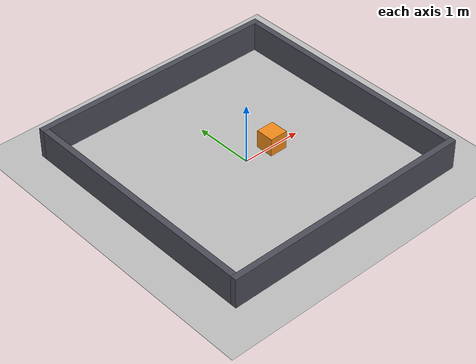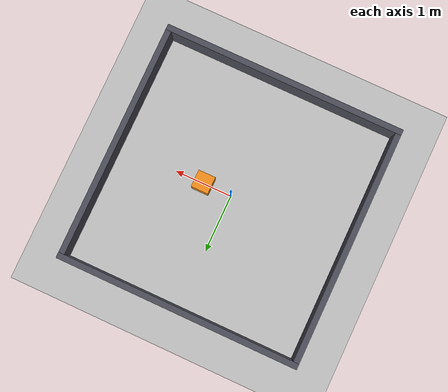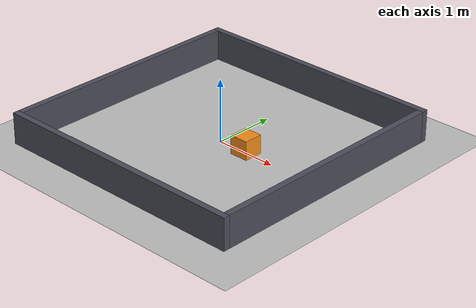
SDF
<?xml version="1.0"?>
<sdf version="1.10">
  <world name="arena">

    <physics name="1ms" type="ignored">
      <max_step_size>0.001</max_step_size>
      <real_time_factor>1.0</real_time_factor>
    </physics>

    <plugin filename="gz-sim-physics-system" name="gz::sim::systems::Physics"/>
    <plugin filename="gz-sim-user-commands-system" name="gz::sim::systems::UserCommands"/>
    <plugin filename="gz-sim-scene-broadcaster-system" name="gz::sim::systems::SceneBroadcaster"/>
    <plugin filename="gz-sim-sensors-system" name="gz::sim::systems::Sensors">
      <render_engine>ogre2</render_engine>
    </plugin>

    <light type="directional" name="sun">
      <cast_shadows>true</cast_shadows>
      <pose>0 0 10 0 0 0</pose>
      <diffuse>0.9 0.9 0.9 1</diffuse>
      <specular>0.2 0.2 0.2 1</specular>
      <direction>-0.5 0.1 -0.9</direction>
    </light>

    <!-- Sol -->
    <model name="sol">
      <static>true</static>
      <link name="link">
        <collision name="collision">
          <geometry><plane><normal>0 0 1</normal><size>20 20</size></plane></geometry>
        </collision>
        <visual name="visual">
          <geometry><plane><normal>0 0 1</normal><size>20 20</size></plane></geometry>
          <material>
            <ambient>0.75 0.75 0.75 1</ambient>
            <diffuse>0.75 0.75 0.75 1</diffuse>
          </material>
        </visual>
      </link>
    </model>

    <!-- Murs de l'arène 4 m x 4 m -->
    <model name="murs">
      <static>true</static>
      <link name="mur_nord">
        <pose>0 2.05 0.25 0 0 0</pose>
        <collision name="collision"><geometry><box><size>4.2 0.1 0.5</size></box></geometry></collision>
        <visual name="visual">
          <geometry><box><size>4.2 0.1 0.5</size></box></geometry>
          <material><ambient>0.3 0.3 0.35 1</ambient><diffuse>0.3 0.3 0.35 1</diffuse></material>
        </visual>
      </link>
      <link name="mur_sud">
        <pose>0 -2.05 0.25 0 0 0</pose>
        <collision name="collision"><geometry><box><size>4.2 0.1 0.5</size></box></geometry></collision>
        <visual name="visual">
          <geometry><box><size>4.2 0.1 0.5</size></box></geometry>
          <material><ambient>0.3 0.3 0.35 1</ambient><diffuse>0.3 0.3 0.35 1</diffuse></material>
        </visual>
      </link>
      <link name="mur_est">
        <pose>2.05 0 0.25 0 0 0</pose>
        <collision name="collision"><geometry><box><size>0.1 4.0 0.5</size></box></geometry></collision>
        <visual name="visual">
          <geometry><box><size>0.1 4.0 0.5</size></box></geometry>
          <material><ambient>0.3 0.3 0.35 1</ambient><diffuse>0.3 0.3 0.35 1</diffuse></material>
        </visual>
      </link>
      <link name="mur_ouest">
        <pose>-2.05 0 0.25 0 0 0</pose>
        <collision name="collision"><geometry><box><size>0.1 4.0 0.5</size></box></geometry></collision>
        <visual name="visual">
          <geometry><box><size>0.1 4.0 0.5</size></box></geometry>
          <material><ambient>0.3 0.3 0.35 1</ambient><diffuse>0.3 0.3 0.35 1</diffuse></material>
        </visual>
      </link>
    </model>

    <!-- La caisse : obstacle au milieu de l'arène -->
    <model name="caisse">
      <static>true</static>
      <pose>0.5 0 0.15 0 0 0</pose>
      <link name="link">
        <collision name="collision"><geometry><box><size>0.3 0.3 0.3</size></box></geometry></collision>
        <visual name="visual">
          <geometry><box><size>0.3 0.3 0.3</size></box></geometry>
          <material><ambient>0.95 0.55 0.1 1</ambient><diffuse>0.95 0.55 0.1 1</diffuse></material>
        </visual>
      </link>
    </model>

  </world>
</sdf>
